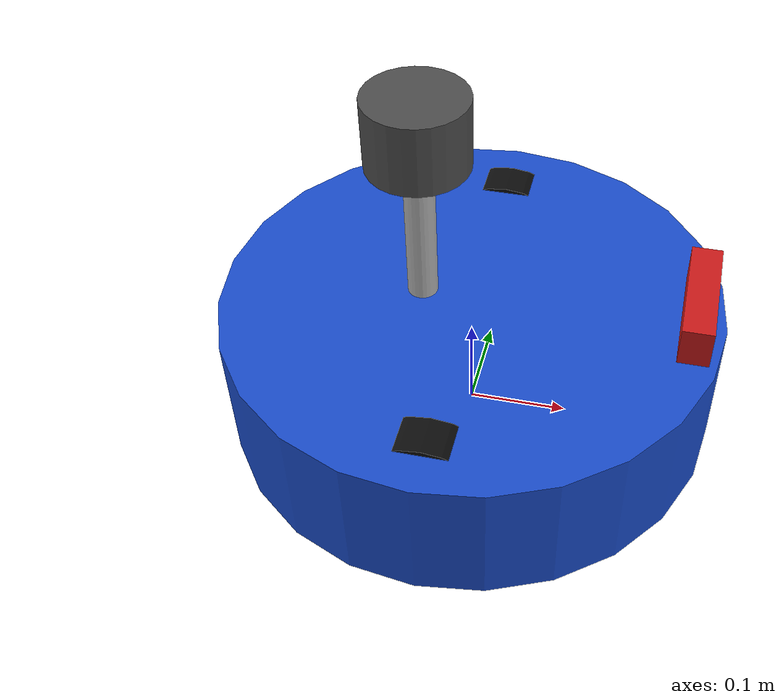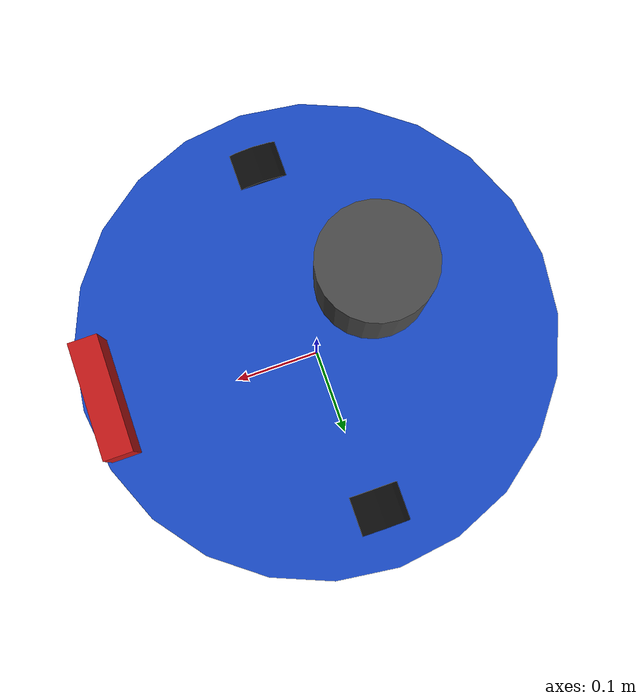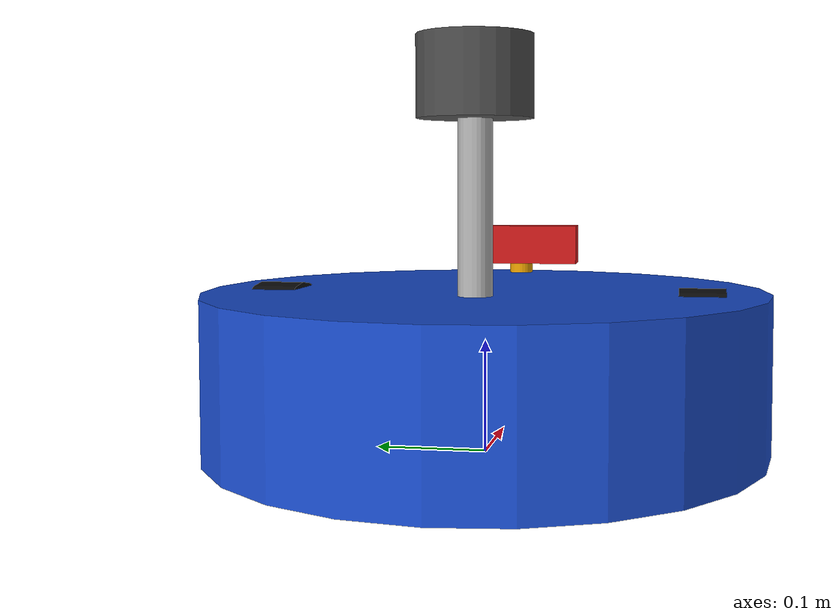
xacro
<?xml version="1.0"?>
<robot xmlns:xacro="http://www.ros.org/wiki/xacro" name="$(arg robot_name)">

  <!-- Variant arguments (see launch/rsp.launch.py for the Pebble/Nomad/Sentinel presets) -->
  <xacro:arg name="robot_name" default="nomad"/>
  <xacro:arg name="mast_h" default="0.15"/>   <!-- lidar mast length above chassis top -->
  <xacro:arg name="cam_h" default="0.10"/>    <!-- camera height above base_link origin -->
  <xacro:arg name="body_rgba" default="0.1 0.3 0.8 1"/>

  <!-- ===== Parameters ===== -->
  <xacro:property name="chassis_r" value="0.25"/>
  <xacro:property name="chassis_h" value="0.14"/>
  <xacro:property name="chassis_mass" value="12.0"/>
  <xacro:property name="wheel_r" value="0.075"/>
  <xacro:property name="wheel_w" value="0.04"/>
  <xacro:property name="wheel_mass" value="1.0"/>
  <xacro:property name="wheel_sep" value="0.38"/>
  <xacro:property name="caster_r" value="0.03"/>
  <xacro:property name="mast_h" value="$(arg mast_h)"/>
  <xacro:property name="cam_h" value="$(arg cam_h)"/>
  <xacro:property name="PI" value="3.14159265359"/>

  <xacro:macro name="box_inertia" params="m x y z">
    <inertial>
      <mass value="${m}"/>
      <inertia ixx="${m*(y*y+z*z)/12}" iyy="${m*(x*x+z*z)/12}" izz="${m*(x*x+y*y)/12}" ixy="0" ixz="0" iyz="0"/>
    </inertial>
  </xacro:macro>

  <!-- ===== Base ===== -->
  <link name="base_footprint"/>

  <link name="base_link">
    <visual>
      <origin xyz="0 0 0"/>
      <geometry><cylinder radius="${chassis_r}" length="${chassis_h}"/></geometry>
      <material name="body_color"><color rgba="$(arg body_rgba)"/></material>
    </visual>
    <collision>
      <geometry><cylinder radius="${chassis_r}" length="${chassis_h}"/></geometry>
    </collision>
    <inertial>
      <mass value="${chassis_mass}"/>
      <inertia ixx="${chassis_mass*(3*chassis_r*chassis_r+chassis_h*chassis_h)/12}" iyy="${chassis_mass*(3*chassis_r*chassis_r+chassis_h*chassis_h)/12}" izz="${chassis_mass*chassis_r*chassis_r/2}" ixy="0" ixz="0" iyz="0"/>
    </inertial>
  </link>

  <!-- base_link origin sits at the chassis centre; wheel axle height = wheel_r -->
  <joint name="base_footprint_joint" type="fixed">
    <parent link="base_footprint"/>
    <child link="base_link"/>
    <origin xyz="0 0 ${wheel_r + 0.0}" rpy="0 0 0"/>
  </joint>

  <!-- ===== Wheels ===== -->
  <xacro:macro name="wheel" params="name y">
    <link name="${name}_wheel">
      <visual>
        <origin rpy="${PI/2} 0 0"/>
        <geometry><cylinder radius="${wheel_r}" length="${wheel_w}"/></geometry>
        <material name="black"><color rgba="0.05 0.05 0.05 1"/></material>
      </visual>
      <collision>
        <origin rpy="${PI/2} 0 0"/>
        <geometry><cylinder radius="${wheel_r}" length="${wheel_w}"/></geometry>
      </collision>
      <inertial>
        <origin rpy="${PI/2} 0 0"/>
        <mass value="${wheel_mass}"/>
        <inertia ixx="${wheel_mass*(3*wheel_r*wheel_r+wheel_w*wheel_w)/12}" iyy="${wheel_mass*(3*wheel_r*wheel_r+wheel_w*wheel_w)/12}" izz="${wheel_mass*wheel_r*wheel_r/2}" ixy="0" ixz="0" iyz="0"/>
      </inertial>
    </link>
    <joint name="${name}_wheel_joint" type="continuous">
      <parent link="base_link"/>
      <child link="${name}_wheel"/>
      <origin xyz="0 ${y} 0" rpy="0 0 0"/>
      <axis xyz="0 1 0"/>
    </joint>
    <gazebo reference="${name}_wheel">
      <mu1>1.0</mu1><mu2>1.0</mu2><kp>500000.0</kp><kd>10.0</kd>
    </gazebo>
  </xacro:macro>
  <xacro:wheel name="left"  y="${wheel_sep/2}"/>
  <xacro:wheel name="right" y="${-wheel_sep/2}"/>

  <!-- ===== Casters (frictionless spheres) ===== -->
  <xacro:macro name="caster" params="name x">
    <link name="${name}_caster">
      <visual><geometry><sphere radius="${caster_r}"/></geometry></visual>
      <collision><geometry><sphere radius="${caster_r}"/></geometry></collision>
      <inertial><mass value="0.1"/><inertia ixx="1e-5" iyy="1e-5" izz="1e-5" ixy="0" ixz="0" iyz="0"/></inertial>
    </link>
    <joint name="${name}_caster_joint" type="fixed">
      <parent link="base_link"/>
      <child link="${name}_caster"/>
      <origin xyz="${x} 0 ${-(wheel_r - caster_r)}"/>
    </joint>
    <gazebo reference="${name}_caster">
      <mu1>0.0</mu1><mu2>0.0</mu2>
    </gazebo>
  </xacro:macro>
  <xacro:caster name="front" x="0.17"/>
  <xacro:caster name="rear"  x="-0.17"/>

  <!-- ===== 3D lidar (16 ch, VLP-16-like) ===== -->
  <link name="lidar_link">
    <visual>
      <geometry><cylinder radius="0.05" length="0.07"/></geometry>
      <material name="grey"><color rgba="0.3 0.3 0.3 1"/></material>
    </visual>
    <collision><geometry><cylinder radius="0.05" length="0.07"/></geometry></collision>
    <inertial><mass value="0.5"/><inertia ixx="5e-4" iyy="5e-4" izz="5e-4" ixy="0" ixz="0" iyz="0"/></inertial>
  </link>
  <joint name="lidar_joint" type="fixed">
    <parent link="base_link"/>
    <child link="lidar_link"/>
    <origin xyz="-0.05 0 ${chassis_h/2 + 0.035 + mast_h}"/>
  </joint>
  <!-- mast -->
  <link name="mast_link">
    <visual>
      <origin xyz="0 0 0"/>
      <geometry><cylinder radius="0.015" length="${mast_h}"/></geometry>
    </visual>
    <inertial><mass value="0.1"/><inertia ixx="1e-4" iyy="1e-4" izz="1e-5" ixy="0" ixz="0" iyz="0"/></inertial>
  </link>
  <joint name="mast_joint" type="fixed">
    <parent link="base_link"/>
    <child link="mast_link"/>
    <origin xyz="-0.05 0 ${chassis_h/2 + mast_h/2}"/>
  </joint>

  <!-- camera post (only needed when the camera sits above the chassis top) -->
  <xacro:if value="${cam_h > chassis_h/2 + 0.02}">
    <link name="camera_post_link">
      <visual><geometry><cylinder radius="0.012" length="${cam_h - chassis_h/2}"/></geometry></visual>
      <inertial><mass value="0.1"/><inertia ixx="1e-4" iyy="1e-4" izz="1e-5" ixy="0" ixz="0" iyz="0"/></inertial>
    </link>
    <joint name="camera_post_joint" type="fixed">
      <parent link="base_link"/>
      <child link="camera_post_link"/>
      <origin xyz="0.22 0 ${(chassis_h/2 + cam_h)/2 - 0.02}"/>
    </joint>
  </xacro:if>

  <!-- ===== RGB-D camera ===== -->
  <link name="camera_link">
    <visual>
      <geometry><box size="0.03 0.12 0.04"/></geometry>
      <material name="red"><color rgba="0.8 0.1 0.1 1"/></material>
    </visual>
    <inertial><mass value="0.1"/><inertia ixx="1e-4" iyy="1e-4" izz="1e-4" ixy="0" ixz="0" iyz="0"/></inertial>
  </link>
  <joint name="camera_joint" type="fixed">
    <parent link="base_link"/>
    <child link="camera_link"/>
    <origin xyz="0.22 0 ${cam_h}"/>
  </joint>
  <!-- optical frame: z forward, x right, y down -->
  <link name="camera_optical_link"/>
  <joint name="camera_optical_joint" type="fixed">
    <parent link="camera_link"/>
    <child link="camera_optical_link"/>
    <origin xyz="0 0 0" rpy="${-PI/2} 0 ${-PI/2}"/>
  </joint>

  <!-- ===== Gazebo plugins ===== -->
  <gazebo>
    <plugin name="diff_drive" filename="libgazebo_ros_diff_drive.so">
      <ros><namespace>/</namespace></ros>
      <update_rate>50</update_rate>
      <left_joint>left_wheel_joint</left_joint>
      <right_joint>right_wheel_joint</right_joint>
      <wheel_separation>${wheel_sep}</wheel_separation>
      <wheel_diameter>${2*wheel_r}</wheel_diameter>
      <max_wheel_torque>30</max_wheel_torque>
      <max_wheel_acceleration>5.0</max_wheel_acceleration>
      <command_topic>cmd_vel</command_topic>
      <odometry_topic>odom</odometry_topic>
      <odometry_frame>odom</odometry_frame>
      <robot_base_frame>base_footprint</robot_base_frame>
      <publish_odom>true</publish_odom>
      <publish_odom_tf>true</publish_odom_tf>
      <publish_wheel_tf>false</publish_wheel_tf>
    </plugin>
    <plugin name="joint_states" filename="libgazebo_ros_joint_state_publisher.so">
      <ros><remapping>~/out:=joint_states</remapping></ros>
      <update_rate>30</update_rate>
      <joint_name>left_wheel_joint</joint_name>
      <joint_name>right_wheel_joint</joint_name>
    </plugin>
  </gazebo>

  <!-- 3D lidar: 16 vertical channels, 360 deg, PointCloud2 on /points -->
  <gazebo reference="lidar_link">
    <sensor name="lidar" type="ray">
      <always_on>true</always_on>
      <visualize>false</visualize>
      <update_rate>10</update_rate>
      <pose>0 0 0 0 0 0</pose>
      <ray>
        <scan>
          <horizontal>
            <samples>720</samples>
            <resolution>1</resolution>
            <min_angle>-3.14159</min_angle>
            <max_angle>3.14159</max_angle>
          </horizontal>
          <vertical>
            <samples>16</samples>
            <resolution>1</resolution>
            <min_angle>-0.2618</min_angle>
            <max_angle>0.2618</max_angle>
          </vertical>
        </scan>
        <range><min>0.3</min><max>30.0</max><resolution>0.01</resolution></range>
        <noise><type>gaussian</type><mean>0.0</mean><stddev>0.01</stddev></noise>
      </ray>
      <plugin name="lidar_plugin" filename="libgazebo_ros_ray_sensor.so">
        <ros>
          <namespace>/</namespace>
          <remapping>~/out:=points</remapping>
        </ros>
        <output_type>sensor_msgs/PointCloud2</output_type>
        <frame_name>lidar_link</frame_name>
      </plugin>
    </sensor>
  </gazebo>

  <!-- RGB-D camera: /camera/image_raw, /camera/depth/image_raw, /camera/points -->
  <gazebo reference="camera_link">
    <sensor name="rgbd_camera" type="depth">
      <always_on>true</always_on>
      <visualize>false</visualize>
      <update_rate>15</update_rate>
      <camera>
        <horizontal_fov>1.2112</horizontal_fov>  <!-- 69.4 deg, RealSense-like -->
        <image><width>640</width><height>480</height><format>R8G8B8</format></image>
        <clip><near>0.3</near><far>8.0</far></clip>
        <noise><type>gaussian</type><mean>0.0</mean><stddev>0.005</stddev></noise>
      </camera>
      <plugin name="rgbd_plugin" filename="libgazebo_ros_camera.so">
        <ros>
          <namespace>/camera</namespace>
        </ros>
        <camera_name>rgbd</camera_name>
        <frame_name>camera_optical_link</frame_name>
        <min_depth>0.3</min_depth>
        <max_depth>8.0</max_depth>
      </plugin>
    </sensor>
  </gazebo>
</robot>
